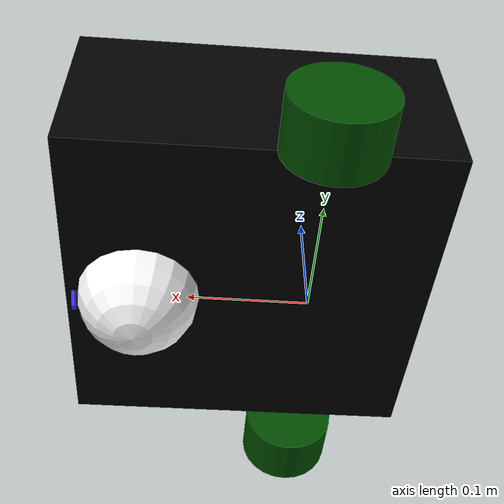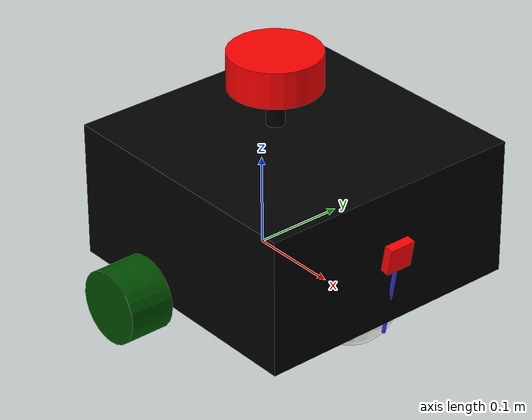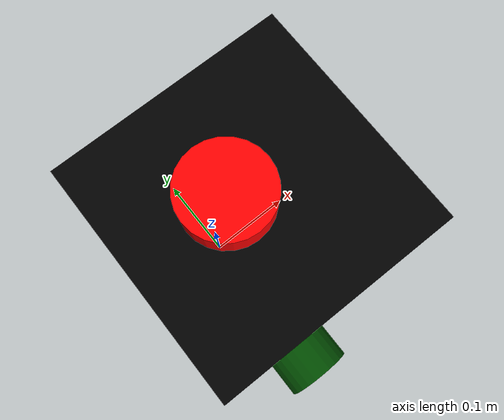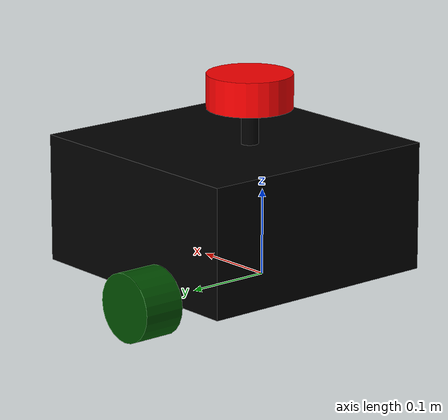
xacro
<?xml version="1.0"?>
<robot xmlns:xacro="http://www.ros.org/wiki/xacro"  name="robot">
<xacro:include filename="inertial_macros.xacro" />

<xacro:include filename="ros2_control.xacro" />

<xacro:include filename="camera.xacro" />
<xacro:include filename="lidar.xacro" />

    <material name="white">
        <color rgba="1 1 1 1" />
    </material>

    <material name="black">
        <color rgba="0 0 0 1" />
    </material>

    <material name="orange">
        <color rgba="1 0.3 0.1 1" />
    </material>

    <material name="blue">
        <color rgba="0.2 0.2 1 1" />
    </material>

    <material name="green">
        <color rgba="0 0.3 0 1" />
    </material>

    <material name="red">
        <color rgba="1 0 0 1" />
    </material>

    <!-- Example link -->
    <link name="base_link"></link>

   <joint name="chassis_joint" type="fixed">
    <parent link="base_link"/>
    <child link="chassis"/>
    <origin xyz="-0.1 0.0 0.0" rpy="0.0 0.0 0.0"/>
   </joint>

   <link name="chassis">
        <visual>
            <origin xyz="0.15 0.0 0.075" rpy="0.0 0.0 0.0"/>
            <geometry>
                <box size="0.3 0.3 0.15"/>
            </geometry>
            <material name="black"></material>
        </visual>
   </link>

   <gazebo reference="chassis">
    <material>Gazebo/Black</material>
   </gazebo>

    <link name="left_wheel">
        <visual>
            <geometry>
                <cylinder radius="0.04" length="0.05" />
            </geometry>
            <material name="green" />
        </visual>
        <collision>
            <geometry>
                <cylinder radius="0.04" length="0.05" />
            </geometry>
        </collision>
        <xacro:inertial_cylinder mass="0.1" radius="0.04" length="0.05">
            <origin xyz="0.0 0.0 0.0" rpy="0.0 0.0 0.0" />
        </xacro:inertial_cylinder>
    </link>

    <joint name="left_wheel_joint" type="continuous">
        <parent link="base_link" />
        <child link="left_wheel" />
        <origin xyz="0.0 0.175 0.0" rpy="-${pi/2} 0.0 0.0" />
        <axis xyz="0.0 0.0 1.0" />
    </joint>

    <gazebo reference="left_wheel">
        <material>Gazebo/Green</material>
   </gazebo>

    <link name="right_wheel">
        <visual>
            <geometry>
                <cylinder radius="0.04" length="0.05" />
            </geometry>
            <material name="green" />
        </visual>
        <collision>
            <geometry>
                <cylinder radius="0.04" length="0.05" />
            </geometry>
        </collision>
        <xacro:inertial_cylinder mass="0.1" radius="0.04" length="0.05">
            <origin xyz="0.0 0.0 0.0" rpy="0.0 0.0 0.0" />
        </xacro:inertial_cylinder>
    </link>

    <joint name="right_wheel_joint" type="continuous">
        <parent link="base_link" />
        <child link="right_wheel" />
        <origin xyz="0.0 -0.175 0.0" rpy="${pi/2} 0.0 0.0" />
        <axis xyz="0.0 0.0 1.0" />
    </joint>

    <gazebo reference="right_wheel">
        <material>Gazebo/Green</material>
   </gazebo>

    <joint name="caster_wheel_joint" type="fixed">
        <parent link="chassis"/>
        <child link="caster_wheel"/>
        <origin xyz="0.24 0 0"/>
    </joint>

    <link name="caster_wheel">
        <visual>
            <geometry>
                <sphere radius="0.05"/>
            </geometry>
            <material name="white"/>
        </visual>
        <collision>
            <geometry>
                <sphere radius="0.05"/>
            </geometry>
        </collision>
        <xacro:inertial_sphere mass="0.1" radius="0.05">
            <origin xyz="0 0 0" rpy="0 0 0"/>
        </xacro:inertial_sphere>
    </link>

    <gazebo reference="caster_wheel">
        <material>Gazebo/White</material>
   </gazebo>

</robot>

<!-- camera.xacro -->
<robot xmlns:xacro="http://www.ros.org/wiki/xacro">

    <joint name="camera_joint" type="fixed">
        <parent link="chassis"/>
        <child link="camera_link"/>
        <origin xyz="0.308 0.0 0.08" rpy="0.0 0.18 0.0"/>
    </joint>

    <link name="camera_link">
        <visual>
            <geometry>
                <box size="0.01 0.03 0.03"/>
            </geometry>
            <material name="red"/>
        </visual>
        <visual>
            <origin xyz="0 0 -0.05"/>
            <geometry>
                <cylinder radius="0.002" length="0.1"/>
            </geometry>
            <material name="blue"/>
        </visual>
    </link>

    <joint name="camera_optical_joint" type="fixed">
        <parent link="camera_link"/>
        <child link="camera_link_optical"/>
        <origin xyz="0.0 0.0 0.0" rpy="${-pi/2} 0 ${-pi/2}"/>
    </joint>

    <link name="camera_link_optical"></link>

    <gazebo reference="camera_link">
        <material>Gazebo/Red</material>

        <sensor name="camera" type="camera">
            <pose>0 0 0 0 0 0</pose>
            <update_rate>10</update_rate>
            <visualize>true</visualize>
            <camera>
                <camera_info_topic>camera/camera_info</camera_info_topic>
                <horizontal_fov>1.089</horizontal_fov>
                <image>
                    <width>640</width>
                    <height>480</height>
                    <format>R8G8B8</format>
                </image>
                <clip>
                    <near>0.05</near>
                    <far>8.0</far>
                </clip>
            </camera>
            <topic>camera/image_raw</topic>
            <gz_frame_id>camera_link_optical</gz_frame_id>
        </sensor>
    </gazebo>
</robot>

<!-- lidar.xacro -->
<robot xmlns:xacro="http://www.ros.org/wiki/xacro" >

    <joint name="laser_joint" type="fixed">
        <parent link="chassis"/>
        <child link="laser_frame"/>
        <origin xyz="0.122 0 0.212" rpy="0 0 0"/>
    </joint>

    <link name="laser_frame">
        <visual>
            <geometry>
                <cylinder radius="0.05" length="0.04"/>
            </geometry>
            <material name="red"/>
        </visual>
        <visual>
            <origin xyz="0 0 -0.05"/>
            <geometry>
                <cylinder radius="0.01" length="0.1"/>
            </geometry>
            <material name="black"/>
        </visual>
        <collision>
            <geometry>
                <cylinder radius="0.05" length="0.04"/>
            </geometry>
        </collision>
        <xacro:inertial_cylinder mass="0.1" length="0.04" radius="0.05">
            <origin xyz="0 0 0" rpy="0 0 0"/>
        </xacro:inertial_cylinder>
    </link>

    <gazebo reference="laser_frame">
        <material>Gazebo/Black</material>

        <sensor name="gpu_lidar" type="gpu_lidar">
            <pose relative_to="lidar_frame"> 0 0 0 0 0 0 </pose>
            <visualize>true</visualize>
            <update_rate>10</update_rate>
            <lidar>
                <scan>
                    <horizontal>
                        <samples>360</samples>
                        <min_angle>-3.14</min_angle>
                        <max_angle>3.14</max_angle>
                    </horizontal>
                </scan>
                <range>
                    <min>0.3</min>
                    <max>12</max>
                </range>
            </lidar>
            <topic>lidar</topic>
            <gz_frame_id>laser_frame</gz_frame_id>
        </sensor>
    </gazebo>

</robot>
